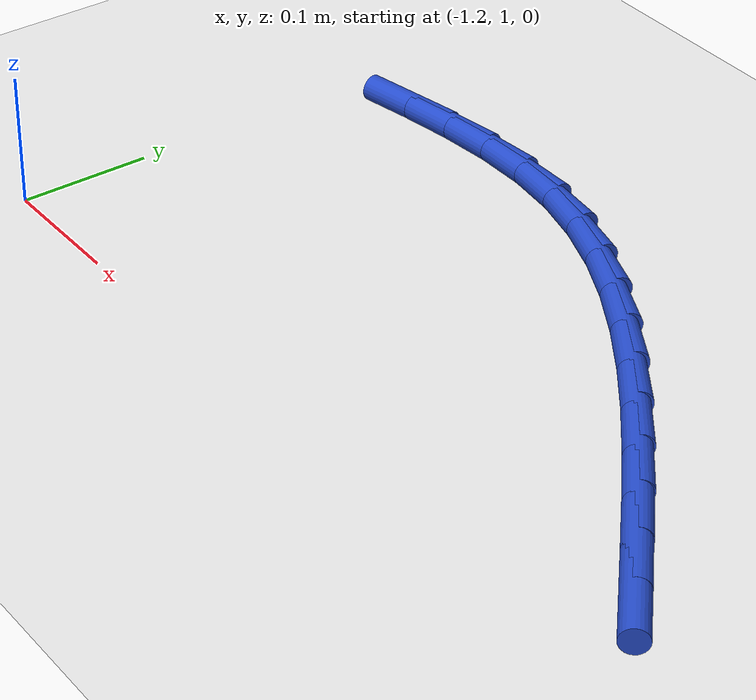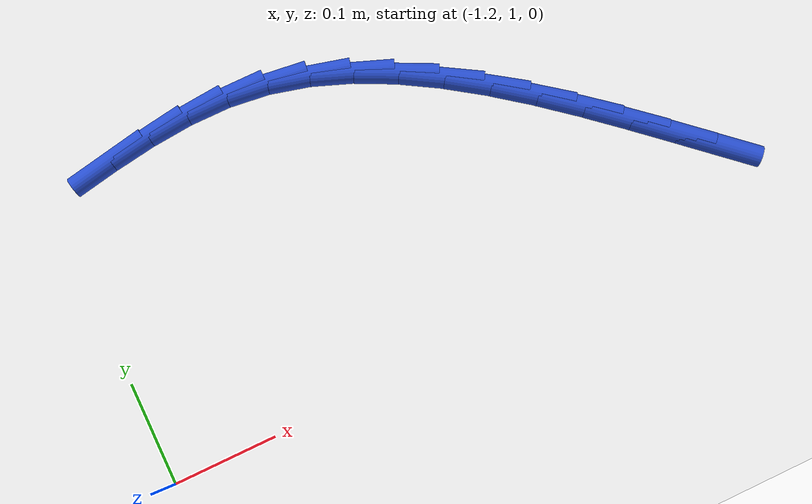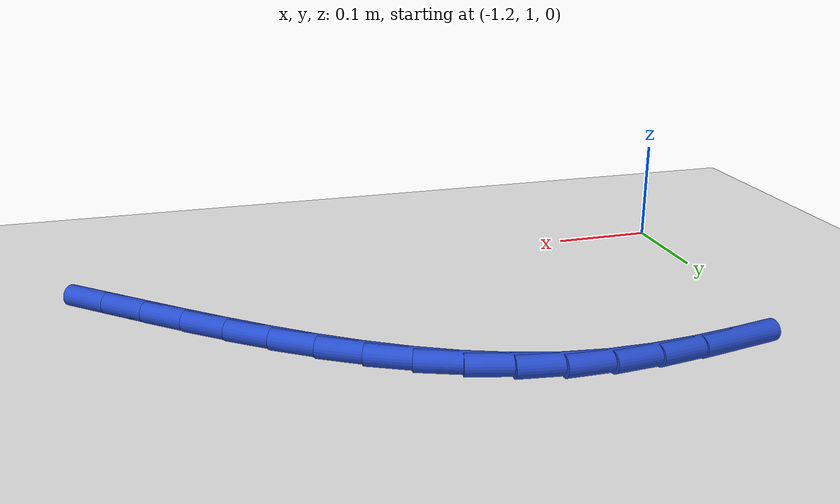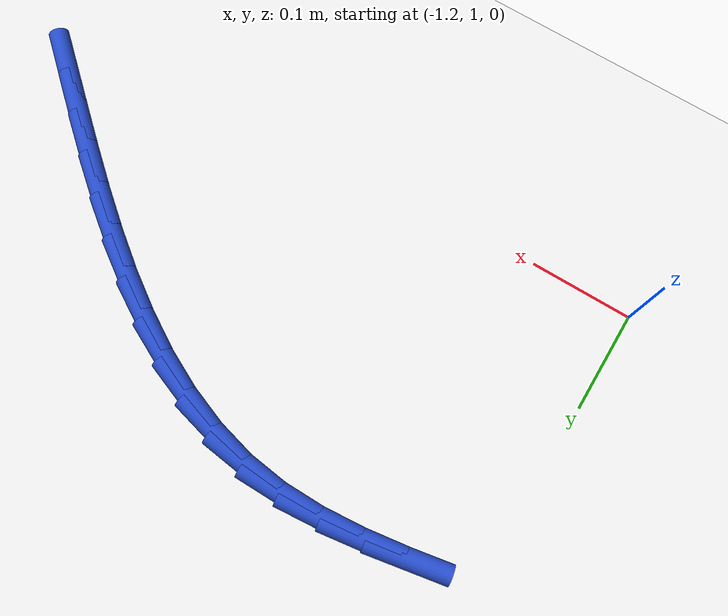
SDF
<sdf version="1.6">
 <world name="default">
  <model name="ground_plane">
   <static>1</static>
   <link name="link">
    <collision name="collision">
     <geometry><plane><normal>0 0 1</normal><size>100 100</size></plane></geometry>
     <surface><friction><ode><mu>100</mu><mu2>50</mu2></ode></friction></surface>
    </collision>
    <visual name="visual">
     <cast_shadows>0</cast_shadows>
     <geometry><plane><normal>0 0 1</normal><size>100 100</size></plane></geometry>
     <material>
      <script><uri>file://media/materials/scripts/gazebo.material</uri><name>Gazebo/WhiteGlow</name></script>
     </material>
    </visual>
   </link>
  </model>
  <model name="line">
   <link name="link_30">
    <pose>-0.6120211160512152 1.0678597007642436 0.01 0 1.57 -0.7296109554559106</pose>
    <collision name="collision">
     <geometry><cylinder><radius>0.01</radius><length>0.08</length></cylinder></geometry>
    </collision>
    <visual name="visual">
     <material>
      <script><name>Gazebo/Blue</name><uri>file://media/materials/scripts/gazebo.material</uri></script>
     </material>
     <geometry><cylinder><radius>0.01</radius><length>0.08</length></cylinder></geometry>
    </visual>
   </link>
   <link name="link_31">
    <pose>-0.6453037108062956 1.097621567841827 0.01 0 1.57 -0.7257256915192237</pose>
    <collision name="collision">
     <geometry><cylinder><radius>0.01</radius><length>0.08</length></cylinder></geometry>
    </collision>
    <visual name="visual">
     <material>
      <script><name>Gazebo/Blue</name><uri>file://media/materials/scripts/gazebo.material</uri></script>
     </material>
     <geometry><cylinder><radius>0.01</radius><length>0.08</length></cylinder></geometry>
    </visual>
   </link>
   <link name="link_32">
    <pose>-0.6789638703955015 1.1274865211845937 0.01 0 1.57 -0.7115037725137986</pose>
    <collision name="collision">
     <geometry><cylinder><radius>0.01</radius><length>0.08</length></cylinder></geometry>
    </collision>
    <visual name="visual">
     <material>
      <script><name>Gazebo/Blue</name><uri>file://media/materials/scripts/gazebo.material</uri></script>
     </material>
     <geometry><cylinder><radius>0.01</radius><length>0.08</length></cylinder></geometry>
    </visual>
   </link>
   <link name="link_33">
    <pose>-0.7130639150809771 1.156885765423402 0.01 0 1.57 -0.686454915482505</pose>
    <collision name="collision">
     <geometry><cylinder><radius>0.01</radius><length>0.08</length></cylinder></geometry>
    </collision>
    <visual name="visual">
     <material>
      <script><name>Gazebo/Blue</name><uri>file://media/materials/scripts/gazebo.material</uri></script>
     </material>
     <geometry><cylinder><radius>0.01</radius><length>0.08</length></cylinder></geometry>
    </visual>
   </link>
   <link name="link_34">
    <pose>-0.7476678687918933 1.1852400216756258 0.01 0 1.57 -0.6498588343215467</pose>
    <collision name="collision">
     <geometry><cylinder><radius>0.01</radius><length>0.08</length></cylinder></geometry>
    </collision>
    <visual name="visual">
     <material>
      <script><name>Gazebo/Blue</name><uri>file://media/materials/scripts/gazebo.material</uri></script>
     </material>
     <geometry><cylinder><radius>0.01</radius><length>0.08</length></cylinder></geometry>
    </visual>
   </link>
   <link name="link_35">
    <pose>-0.7828397554574216 1.2119700110586393 0.01 0 1.57 -0.6006031645662075</pose>
    <collision name="collision">
     <geometry><cylinder><radius>0.01</radius><length>0.08</length></cylinder></geometry>
    </collision>
    <visual name="visual">
     <material>
      <script><name>Gazebo/Blue</name><uri>file://media/materials/scripts/gazebo.material</uri></script>
     </material>
     <geometry><cylinder><radius>0.01</radius><length>0.08</length></cylinder></geometry>
    </visual>
   </link>
   <link name="link_36">
    <pose>-0.8186435990067328 1.236496454689817 0.01 0 1.57 -0.5372653583464293</pose>
    <collision name="collision">
     <geometry><cylinder><radius>0.01</radius><length>0.08</length></cylinder></geometry>
    </collision>
    <visual name="visual">
     <material>
      <script><name>Gazebo/Blue</name><uri>file://media/materials/scripts/gazebo.material</uri></script>
     </material>
     <geometry><cylinder><radius>0.01</radius><length>0.08</length></cylinder></geometry>
    </visual>
   </link>
   <link name="link_37">
    <pose>-0.8551434233689977 1.2582400736865322 0.01 0 1.57 -0.45830006181834854</pose>
    <collision name="collision">
     <geometry><cylinder><radius>0.01</radius><length>0.08</length></cylinder></geometry>
    </collision>
    <visual name="visual">
     <material>
      <script><name>Gazebo/Blue</name><uri>file://media/materials/scripts/gazebo.material</uri></script>
     </material>
     <geometry><cylinder><radius>0.01</radius><length>0.08</length></cylinder></geometry>
    </visual>
   </link>
   <link name="link_38">
    <pose>-0.8924032524733878 1.276621589166159 0.01 0 1.57 -0.3624187092340209</pose>
    <collision name="collision">
     <geometry><cylinder><radius>0.01</radius><length>0.08</length></cylinder></geometry>
    </collision>
    <visual name="visual">
     <material>
      <script><name>Gazebo/Blue</name><uri>file://media/materials/scripts/gazebo.material</uri></script>
     </material>
     <geometry><cylinder><radius>0.01</radius><length>0.08</length></cylinder></geometry>
    </visual>
   </link>
   <link name="link_39">
    <pose>-0.9304871102490737 1.2910617222460712 0.01 0 1.57 -0.24923645722205326</pose>
    <collision name="collision">
     <geometry><cylinder><radius>0.01</radius><length>0.08</length></cylinder></geometry>
    </collision>
    <visual name="visual">
     <material>
      <script><name>Gazebo/Blue</name><uri>file://media/materials/scripts/gazebo.material</uri></script>
     </material>
     <geometry><cylinder><radius>0.01</radius><length>0.08</length></cylinder></geometry>
    </visual>
   </link>
   <link name="link_40">
    <pose>-0.9694590206252272 1.3009811940436438 0.01 0 1.57 -0.12096045619981854</pose>
    <collision name="collision">
     <geometry><cylinder><radius>0.01</radius><length>0.08</length></cylinder></geometry>
    </collision>
    <visual name="visual">
     <material>
      <script><name>Gazebo/Blue</name><uri>file://media/materials/scripts/gazebo.material</uri></script>
     </material>
     <geometry><cylinder><radius>0.01</radius><length>0.08</length></cylinder></geometry>
    </visual>
   </link>
   <link name="link_41">
    <pose>-1.009378238541521 1.3058335295089432 0.01 0 1.57 -0.0005305506945611249</pose>
    <collision name="collision">
     <geometry><cylinder><radius>0.01</radius><length>0.08</length></cylinder></geometry>
    </collision>
    <visual name="visual">
     <material>
      <script><name>Gazebo/Blue</name><uri>file://media/materials/scripts/gazebo.material</uri></script>
     </material>
     <geometry><cylinder><radius>0.01</radius><length>0.08</length></cylinder></geometry>
    </visual>
   </link>
   <link name="link_42">
    <pose>-1.0501901975151366 1.3058551823241547 0.01 0 1.57 0.09060492197023447</pose>
    <collision name="collision">
     <geometry><cylinder><radius>0.01</radius><length>0.08</length></cylinder></geometry>
    </collision>
    <visual name="visual">
     <material>
      <script><name>Gazebo/Blue</name><uri>file://media/materials/scripts/gazebo.material</uri></script>
     </material>
     <geometry><cylinder><radius>0.01</radius><length>0.08</length></cylinder></geometry>
    </visual>
   </link>
   <link name="link_43">
    <pose>-1.0917241640870925 1.3020816689609378 0.01 0 1.57 0.15318985053201506</pose>
    <collision name="collision">
     <geometry><cylinder><radius>0.01</radius><length>0.08</length></cylinder></geometry>
    </collision>
    <visual name="visual">
     <material>
      <script><name>Gazebo/Blue</name><uri>file://media/materials/scripts/gazebo.material</uri></script>
     </material>
     <geometry><cylinder><radius>0.01</radius><length>0.08</length></cylinder></geometry>
    </visual>
   </link>
   <link name="link_44">
    <pose>-1.133804166636989 1.2955845369559973 0.01 0 1.57 0.189664067207355</pose>
    <collision name="collision">
     <geometry><cylinder><radius>0.01</radius><length>0.08</length></cylinder></geometry>
    </collision>
    <visual name="visual">
     <material>
      <script><name>Gazebo/Blue</name><uri>file://media/materials/scripts/gazebo.material</uri></script>
     </material>
     <geometry><cylinder><radius>0.01</radius><length>0.08</length></cylinder></geometry>
    </visual>
   </link>
  </model>
 </world>
</sdf>
